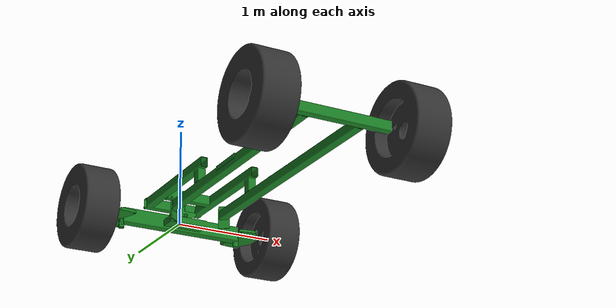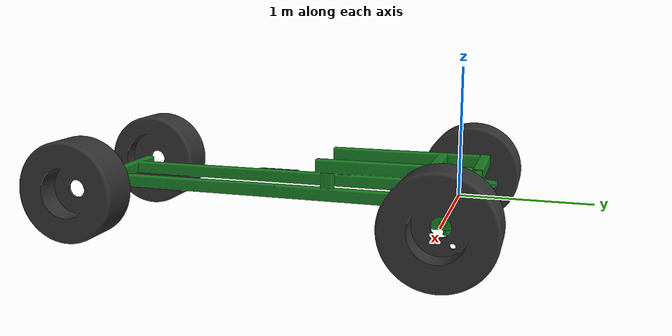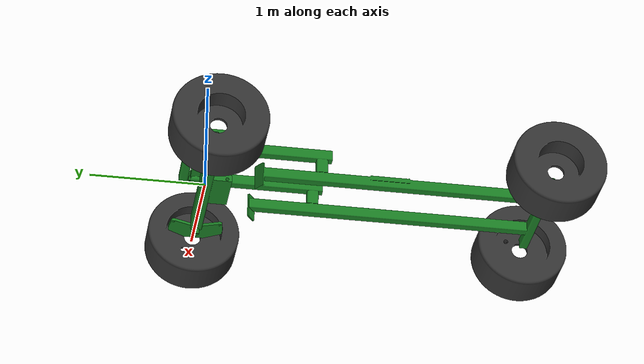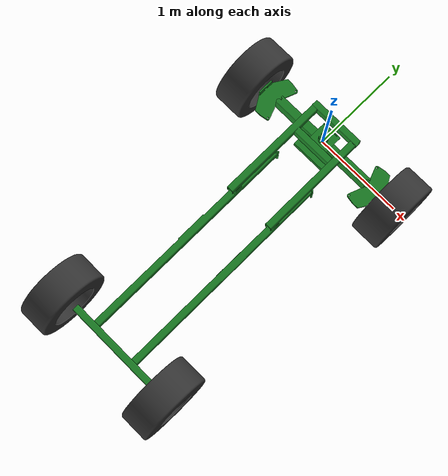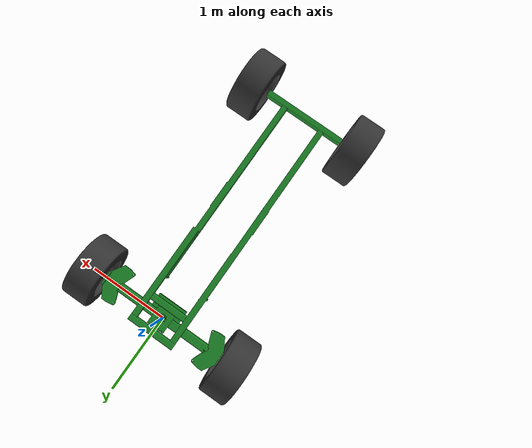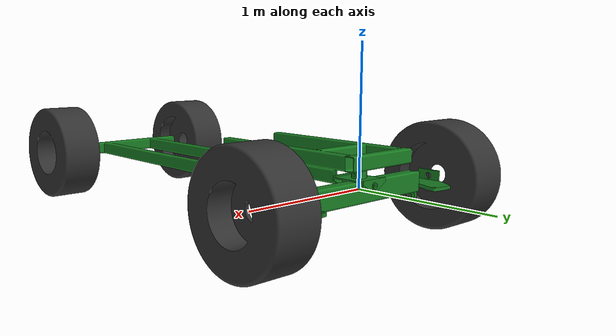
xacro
<?xml version="1.0"?>
<robot xmlns:xacro="http://www.ros.org/wiki/xacro" name="example_robot">
  <xacro:include filename="$(find control_mre)/urdf/base_link.urdf.xacro"/>

  <ros2_control name="GazeboSimSystem" type="system">
    <hardware>
      <plugin>gazebo_ros2_control/GazeboSystem</plugin>
    </hardware>

    <!-- Front wheels -->
    <joint name="front_driver_wheel_joint">
      <command_interface name="position">
      </command_interface>
      <state_interface name="velocity" />
      <state_interface name="position" />
    </joint>
    <joint name="front_passenger_wheel_joint">
      <command_interface name="position">
      </command_interface>
      <state_interface name="velocity" />
      <state_interface name="position" />
    </joint>

    <!-- Rear wheels -->
    <joint name="rear_driver_wheel_joint">
      <command_interface name="velocity">
      </command_interface>
      <state_interface name="velocity" />
      <state_interface name="position" />
    </joint>
    <joint name="rear_passenger_wheel_joint">
      <command_interface name="velocity">
      </command_interface>
      <state_interface name="velocity" />
      <state_interface name="position" />
    </joint>

    <!-- Wheel Brackets -->
    <joint name="wheel_bracket_driver_joint">
      <command_interface name="position">
        <param name="initial_value">0.0</param>
      </command_interface>
      <state_interface name="velocity" />
      <state_interface name="position" />
    </joint>
    <joint name="wheel_bracket_passenger_joint">
      <command_interface name="position">
        <param name="initial_value">0.0</param>
      </command_interface>
      <state_interface name="velocity" />
      <state_interface name="position" />
    </joint>
  </ros2_control>

  <gazebo>
    <plugin name="gazebo_ros2_control" filename="libgazebo_ros2_control.so">
      <parameters>$(find control_mre)/config/controllers_sim.yaml</parameters>
    </plugin>

    <!-- This is mainly included to publish odom frame....migration from previous package -->
    <plugin name="diff_drive" filename="libgazebo_ros_diff_drive.so">
      <update_rate>30</update_rate>

      <!-- Wheel Information -->
      <left_joint>front_driver_wheel_joint</left_joint>
      <right_joint>front_passenger_wheel_joint</right_joint>
      <wheel_separation>0.6038</wheel_separation>
      <wheel_diameter>0.200</wheel_diameter>

      <!-- Limits -->
      <max_wheel_torque>2.5</max_wheel_torque>
      <max_wheel_acceleration>10.0</max_wheel_acceleration>

      <command_topic>cmd_vel</command_topic>
      <!-- Output -->
      <odometry_topic>odom</odometry_topic>
      <odometry_frame>odom</odometry_frame>
      <robot_base_frame>base_link</robot_base_frame>

      <publish_odom>true</publish_odom>
      <publish_odom_tf>true</publish_odom_tf>
      <!-- This is set to false so ROS Control can manage the wheels -->
      <publish_wheel_tf>false</publish_wheel_tf>
    </plugin>

  </gazebo>
</robot>

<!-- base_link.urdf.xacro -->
<robot xmlns:xacro="http://www.ros.org/wiki/xacro">

  <xacro:arg name="latitude" default="49.9"/>
  <xacro:arg name="longitude" default="8.9"/>
  <xacro:arg name="heading" default="0.0"/>
  <xacro:arg name="altitude" default="0.0"/>

  <xacro:include filename="$(find control_mre)/urdf/wheel.urdf.xacro"/>
  <xacro:include filename="$(find control_mre)/urdf/wheel_trans.urdf.xacro"/>
  <xacro:include filename="$(find control_mre)/urdf/wheel_bracket.urdf.xacro"/>
  <xacro:include filename="$(find control_mre)/urdf/front_mount_yaw.urdf.xacro"/>
  <xacro:include filename="$(find control_mre)/urdf/front_mount_roll.urdf.xacro"/>

  <link name="base_link">
    <inertial>
      <origin xyz="0 0 0" rpy="0 0 0" />
      <mass value="100.0" />
      <inertia ixx="16.6666666667" ixy="0" ixz="0" iyy="10.4166666667" iyz="0" izz="10.4166666667" />
    </inertial>
    <visual>
      <origin xyz="0 0 0" rpy="1.5708 0 0" />
      <geometry>
        <mesh filename="file://$(find control_mre)/meshes/chassis.stl" scale="0.001 0.001 0.001" />
      </geometry>
      <material name="">
        <color rgba="0.10 0.50 0.14 1" />
      </material>
    </visual>
  </link>

  <xacro:wheel_bracket name="wheel_bracket_driver" parent="front_mount_roll_link">
    <axis xyz="0 0 1"/>
		<origin rpy="0 0 -1.5708" xyz="-0.62865 0 -0.038881"/>
	</xacro:wheel_bracket>

  <xacro:wheel_bracket name="wheel_bracket_passenger" parent="front_mount_roll_link">
    <axis xyz="0 0 1"/>
		<origin rpy="0 0 1.5708" xyz="0.62865 0 -0.038881"/>
	</xacro:wheel_bracket>

  <xacro:wheel name="front_driver_wheel" parent="wheel_bracket_driver_link">
    <axis xyz="0 0 -1"/>
    <origin rpy="-1.5708 0 0" xyz="0 -0.180975 0.053975"/>
  </xacro:wheel>

  <xacro:wheel name="front_passenger_wheel" parent="wheel_bracket_passenger_link">
    <axis xyz="0 0 1"/>
    <origin rpy="-1.5708 0 0" xyz="0 -0.180975 0.053975"/>
  </xacro:wheel>

  <xacro:wheel name="rear_driver_wheel" parent="base_link">
    <axis xyz="0 0 -1"/>
		<origin rpy="0 1.5708 0" xyz="-0.549148 -2.9718 0"/>
	</xacro:wheel>

  <xacro:wheel name="rear_passenger_wheel" parent="base_link">
    <axis xyz="0 0 1"/>
		<origin rpy="0 -1.5708 0" xyz="0.549148 -2.9718 0"/>
	</xacro:wheel>

	<gazebo reference="base_link">
    <visual>
      <material>
        <ambient>0.10 0.25 0.14 1.0</ambient>
        <diffuse>0.10 0.25 0.14 1.0</diffuse>
        <specular>0.10 0.25 0.14 1.0</specular>
        <emissive>0.10 0.25 0.14 1.0</emissive>
      </material>
    </visual>
	</gazebo>

  <gazebo reference="base_link">
    <sensor name="gps_sensor" type="gps">
      <always_on>true</always_on>
      <update_rate>10.0</update_rate>
      <plugin name="gps_controller" filename="libgazebo_ros_gps_sensor.so">
        <ros>
          <remapping>gps_controller/out:=/fix_sim</remapping>
          <remapping>gps_controller/vel:=/vel_sim</remapping>
        </ros>
        <frame_name>base_link</frame_name>
      </plugin>
    </sensor>
  </gazebo>

</robot>

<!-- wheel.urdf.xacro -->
<robot xmlns:xacro="http://www.ros.org/wiki/xacro">

  <xacro:macro name="wheel" params="name parent *origin *axis">

    <link name="${name}_link">
      <inertial>
        <mass value="10.0"/>
        <inertia  ixx="0.52389008125" ixy="0.00"  ixz="0.00" iyy="0.52389008125" iyz="0.00" izz="0.8518128125" />
      </inertial>
      <visual>
        <origin xyz="0 0 0" rpy="0 0 0"/>
        <geometry>
          <mesh
            filename="file://$(find control_mre)/meshes/wheel.stl" scale="0.001 0.001 0.001" />
        </geometry>
        <material name="">
          <color rgba=".2 0.2 0.2 1" />
        </material>
      </visual>
      <collision>
        <origin xyz="0 0 -0.195" rpy="0 0 0"/>
        <geometry>
          <cylinder radius="0.41275" length="0.3429"/>
        </geometry>
      </collision>
    </link>

    <joint name="${name}_joint" type="continuous">
      <parent link="${parent}"/>
      <child link="${name}_link"/>
      <xacro:insert_block name="axis"/>
      <xacro:insert_block name="origin"/>
      <dynamics damping="0.001" friction="0.01"/>
    </joint>

    <gazebo reference="${name}_link">

		<material>Gazebo/DarkGrey</material>

     <collision>
      <surface>
       <friction>
        <ode>
         <mu>100</mu>
         <mu2>100</mu2>
        </ode>
       </friction>
      </surface>
     </collision>
    </gazebo>

  </xacro:macro>

</robot>

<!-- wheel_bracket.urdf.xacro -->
<robot xmlns:xacro="http://www.ros.org/wiki/xacro">

  <xacro:macro name="wheel_bracket" params="name parent *origin *axis">

    <link name="${name}_link">
      <inertial>
        <origin xyz="0 0 0" rpy="0 0 0" />
        <mass value="0.01" />
        <inertia ixx="0.001" ixy="0" ixz="0" iyy="0.001" iyz="0" izz="0.001" />
      </inertial>
      <visual>
        <origin xyz="0 0 0" rpy="0 0 0" />
        <geometry>
          <mesh
            filename="file://$(find control_mre)/meshes/wheel_bracket.stl" scale="0.001 0.001 0.001" />
        </geometry>
        <material name="">
          <color rgba="0.10 0.50 0.14 1" />
        </material>
      </visual>
    </link>

    <joint name="${name}_joint" type="revolute">
      <parent link="${parent}"/>
      <child link="${name}_link"/>
      <xacro:insert_block name="axis" />
      <xacro:insert_block name="origin" />
      <dynamics damping="10.0" friction="1.0"/>
      <limit lower="-0.698132" upper="0.698132" effort="1000" velocity="10.0" />
    </joint>

    <transmission name="trans_${name}">
      <type>transmission_interface/SimpleTransmission</type>
      <actuator name="motor_${name}">
        <mechanicalReduction>10000</mechanicalReduction>
        <hardwareInterface>EffortJointInterface</hardwareInterface>
      </actuator>
      <joint name="${name}">
        <hardwareInterface>hardware_interface/EffortJointInterface</hardwareInterface>
      </joint>
    </transmission>

    <gazebo reference="${name}_link">
      <visual>
        <material>
          <ambient>0.10 0.25 0.14 1.0</ambient>
          <diffuse>0.10 0.25 0.14 1.0</diffuse>
          <specular>0.10 0.25 0.14 1.0</specular>
          <emissive>0.10 0.25 0.14 1.0</emissive>
        </material>
      </visual>
    </gazebo>

  </xacro:macro>

</robot>

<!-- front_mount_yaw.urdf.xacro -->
<robot xmlns:xacro="http://www.ros.org/wiki/xacro">

  <link name="front_mount_yaw_link">
    <inertial>
      <origin xyz="0 0 0" rpy="0 0 0" />
      <mass value="0.001" />
      <inertia ixx="0.001" ixy="0" ixz="0" iyy="0.001" iyz="0" izz="0.001" />
    </inertial>
    <visual>
      <origin xyz="0 0 0" rpy="1.5708 0 0" />
      <geometry>
        <mesh filename="file://$(find control_mre)/meshes/front_mount_yaw.stl" scale="0.001 0.001 0.001" />
      </geometry>
      <material name="">
        <color rgba="0.10 0.50 0.14 1" />
      </material>
    </visual>
    <collision>
      <origin xyz="0 0 0" rpy="1.5708 0 0" />
      <geometry>
        <mesh filename="file://$(find control_mre)/meshes/front_mount_yaw.stl" scale="0.001 0.001 0.001" />
      </geometry>
    </collision>
  </link>

  <joint name="front_mount_yaw_joint" type="fixed">
    <parent link="base_link"/>
    <child link="front_mount_yaw_link"/>
    <origin xyz="0 0 0.1905" rpy="0 0 0"/>
    <axis xyz="0 0 -1"/>
    <dynamics damping="0.1" friction="0.1"/>
    <limit lower="-0.6" upper="0.6" effort="100" velocity="1.0" />
  </joint>

	<gazebo reference="front_mount_yaw_link">
    <visual>
      <material>
        <ambient>0.10 0.25 0.14 1.0</ambient>
        <diffuse>0.10 0.25 0.14 1.0</diffuse>
        <specular>0.10 0.25 0.14 1.0</specular>
        <emissive>0.10 0.25 0.14 1.0</emissive>
      </material>
    </visual>
	</gazebo>

</robot>

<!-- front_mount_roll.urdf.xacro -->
<robot xmlns:xacro="http://www.ros.org/wiki/xacro">

  <link name="front_mount_roll_link">
    <inertial>
      <origin xyz="0 0 0" rpy="0 0 0" />
      <mass value="0.001" />
      <inertia ixx="0.001" ixy="0" ixz="0" iyy="0.001" iyz="0" izz="0.001" />
    </inertial>
    <visual>
      <origin xyz="0 0 0" rpy="3.1415 0 0" />
      <geometry>
        <mesh filename="file://$(find control_mre)/meshes/front_mount_roll.stl" scale="0.001 0.001 0.001" />
      </geometry>
      <material name="">
        <color rgba="0.10 0.50 0.14 1" />
      </material>
    </visual>
  </link>

  <joint name="front_mount_roll_joint" type="fixed">
    <parent link="base_link"/>
    <child link="front_mount_roll_link"/>
    <origin xyz="0 0 -0.015093" rpy="0 0 0"/>
    <axis xyz="0 1 0"/>
  </joint>

	<gazebo reference="front_mount_roll_link">
    <visual>
      <material>
        <ambient>0.10 0.25 0.14 1.0</ambient>
        <diffuse>0.10 0.25 0.14 1.0</diffuse>
        <specular>0.10 0.25 0.14 1.0</specular>
        <emissive>0.10 0.25 0.14 1.0</emissive>
      </material>
    </visual>
	</gazebo>

</robot>
